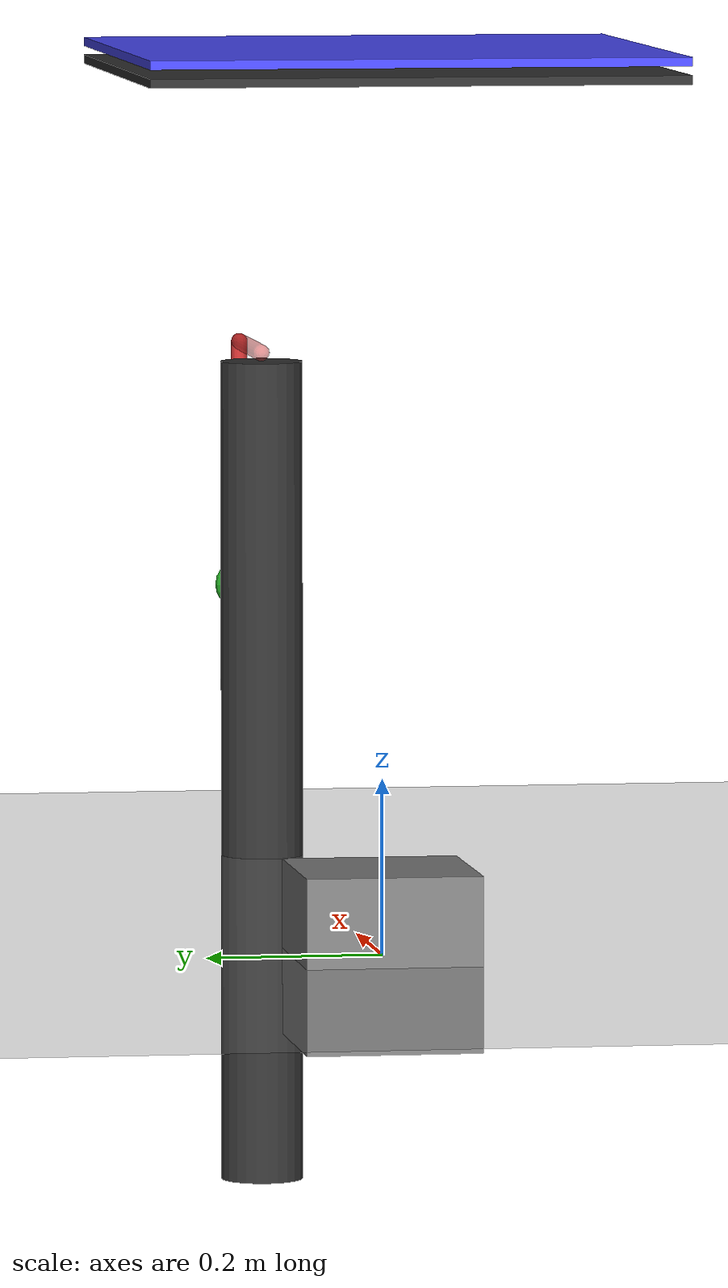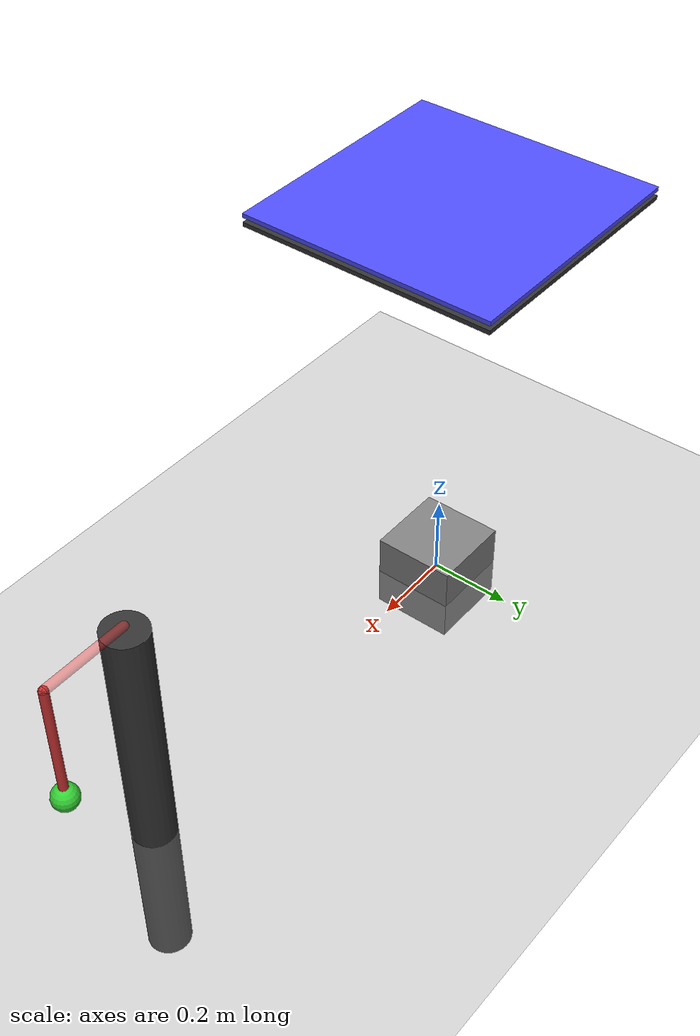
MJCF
<?xml version="1.0" encoding="utf-8"?>
<mujoco model="inverted_pendulum">
    <compiler angle="radian" meshdir="meshes" autolimits="true" />
    <option timestep="0.002" gravity="0 0 -9.81" integrator="implicitfast" density="1.225"
        viscosity="1.8e-5" />

    <visual>
        <quality shadowsize="16384" numslices="28" offsamples="4" />
        <headlight diffuse="1 1 1" specular="0.5 0.5 0.5" active="1" />
    </visual>
    <asset>
        <mesh name="tetrahedron" vertex="0 0 0 1 0 0 0 1 0 0 0 1" />
        <texture type="skybox" file="../asset/desert.png"
            gridsize="3 4" gridlayout=".U..LFRB.D.." />
        <texture name="plane" type="2d" builtin="checker" rgb1=".1 .1 .1" rgb2=".9 .9 .9"
            width="512" height="512" mark="cross" markrgb=".8 .8 .8" />
        <material name="plane" reflectance="0.3" texture="plane" texrepeat="1 1" texuniform="true" />
    </asset>

    <worldbody>
        <geom name="floor" pos="0 0 0" size="0 0 .25" type="plane" material="plane"
            condim="3" />
        <light directional="true" ambient=".3 .3 .3" pos="30 30 30" dir="0 -.5 -1"
            diffuse=".5 .5 .5" specular=".5 .5 .5" />

        <camera name="c2" pos="1 0 1" mode="targetbody" target="B" fovy="54.225" />

        <body name="B" pos="0 0 0">
            <freejoint />
            <site name="imu" />
            <camera name="c1" mode="fixed" fovy="54.225" euler="1.57 0 0" />
            <geom type="box" size="0.1 0.1 0.1" rgba=".5 .5 .5 1" />
        </body>

        <body pos="0 0 1">
            <geom type="box" size=".3 .3 .005" rgba=".2 .2 .2 1" />
            <body name="up_box" pos="0 0 .02">
                <site name="force_torque" />
                <geom type="box" size=".3 .3 .005" rgba=".3 .3 1 1" mass="0.01" />
            </body>
        </body>

        <!-- 支撑柱 -->
        <body name="support" pos="1 0 0.1">
            <geom type="cylinder" mass="100" size="0.05 0.5" rgba="0.2 0.2 0.2 1" />
            <!-- 水平杆 -->
            <body name="rotay_am" pos="0 0 0.51">
                <joint type="hinge" name="pivot" pos="0 0 0" axis="0 0 1" damping="0.001"
                    frictionloss="0.0" stiffness="0.5" />
                <geom type="capsule" mass="0.01" fromto="0 0 0 0.2 0 0" size="0.01"
                    rgba="0.8 0.2 0.2 0.5" />
                <body name="pendulum" pos="0.2 0 0">
                    <joint type="ball" name="ph" pos="0 0 0" damping="0.001"
                        frictionloss="0.0" />
                    <geom type="capsule" mass="0.005" fromto="0 0 0 0 0 -0.3" size="0.01"
                        rgba="0.8 0.2 0.2 1" />
                    <!-- 配重 -->
                    <geom type="sphere" mass="0.01" size="0.03" pos="0 0 -0.3" rgba="0.2 0.8 0.2 1" />
                </body>
            </body>
        </body>

    </worldbody>
    <sensor>
        <subtreelinvel name="base_lin_vel" body="B" />
    </sensor>

    <actuator>
        <position kp="2" kv="0.1" name="pivot" joint="pivot" ctrlrange="-3.14 3.14"
            forcerange="-5 5" />
    </actuator>
</mujoco>
